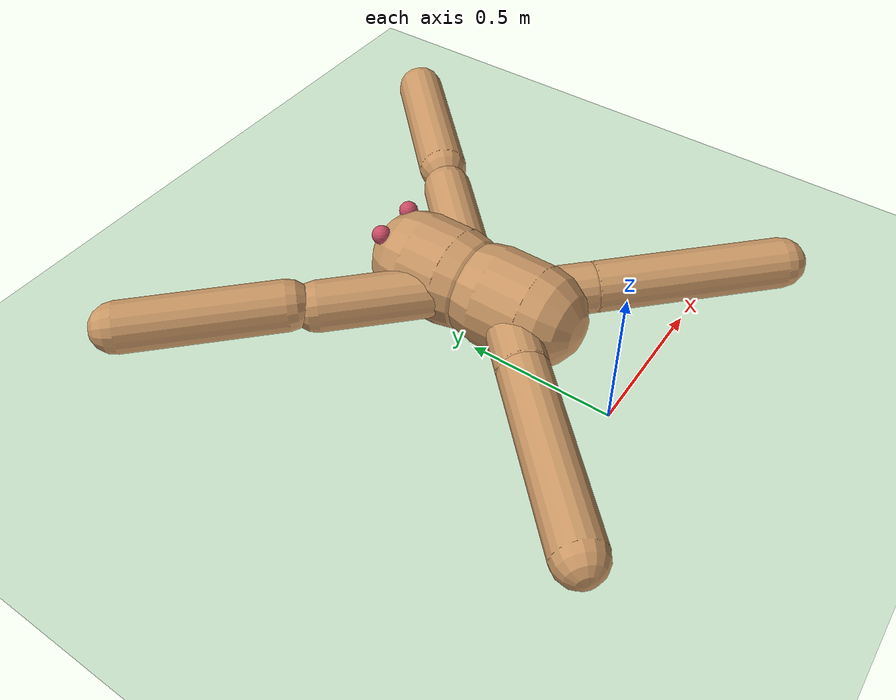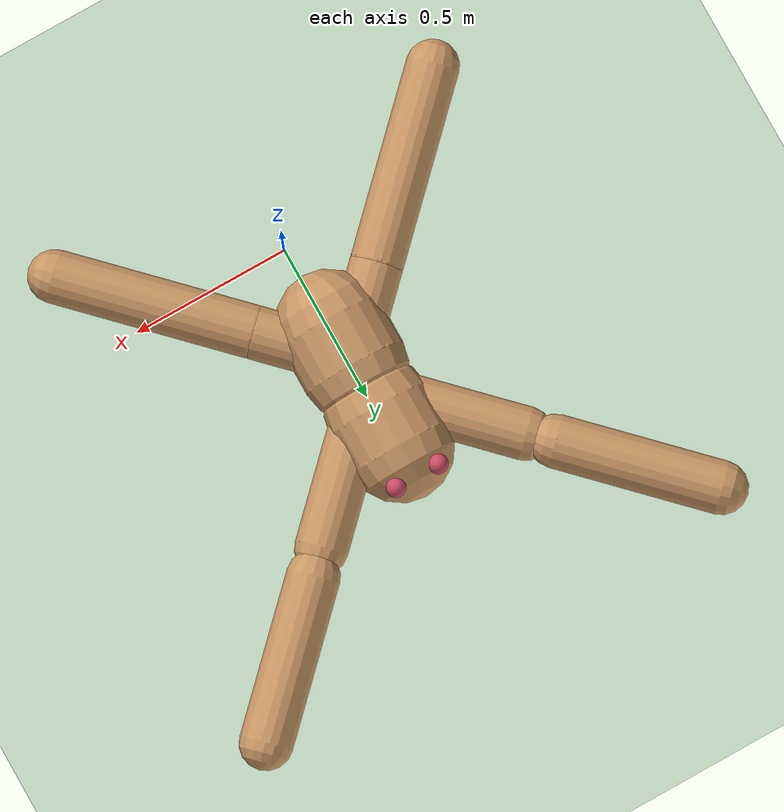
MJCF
<mujoco model="ant">
  <compiler angle="radian"/>

  <option timestep="0.01" integrator="RK4"/>

  <visual>
    <global offwidth="480"/>
  </visual>

  <default>
    <joint limited="true" armature="1" damping="2"/>
    <geom conaffinity="0" friction="1 0.5 0.5" margin="0.01" density="500" rgba="0.8 0.6 0.4 1"/>
  </default>

  <custom>
    <numeric name="init_qpos" size="15" data="0 0 0.55 0.707107 0 0 -0.707107 0 1 0 -1 0 -1 0 1"/>
  </custom>

  <asset>
    <texture type="skybox" colorspace="auto" builtin="gradient" rgb1="1 1 1" rgb2="0 0 0" width="100" height="600"/>
    <texture type="cube" colorspace="auto" name="texgeom" builtin="flat" mark="cross" rgb1="0.8 0.6 0.4" rgb2="0.8 0.6 0.4" markrgb="1 1 1" width="127" height="762"/>
    <texture type="2d" colorspace="auto" name="texplane" builtin="checker" rgb1="0 0 0" rgb2="0.8 0.8 0.8" width="100" height="100"/>
    <material name="MatPlane" texture="texplane" texrepeat="60 60" specular="1" shininess="1" reflectance="0.5"/>
    <material name="geom" texture="texgeom" texuniform="true"/>
  </asset>

  <worldbody>
    <geom name="floor" size="40 40 40" type="plane" conaffinity="1" material="MatPlane" rgba="0.8 0.9 0.8 1"/>
    <light pos="0 0 1.3" dir="0 0 -1" type="directional" cutoff="100" exponent="1" diffuse="1 1 1" specular="0.1 0.1 0.1"/>
    <body name="torso_f" pos="0 0.6 0.28">
      <joint name="root" type="free" margin="0.01" armature="0" damping="0"/>
      <geom name="torso_front" type="capsule"  size="0.16 0.2" fromto="0 -.03  0   0 0.1  0"  />
      <geom name="left_eye" size="0.03" pos="-0.07 0.2 0.11" rgba="0.8 0.3 0.4 1" />
      <geom name="right_eye" size="0.03" pos="0.07 0.2 0.11" rgba="0.8 0.3 0.4 1" />

      <camera name="track" pos="3.5 0 0.45" quat="0.478354 0.520038 0.520038 0.478354" mode="trackcom"/>
      <body name="front_right_leg" pos=".02 -0.08 0.0">
        <joint name="hip_1" pos="0 0 0" axis="0 0 1" range="-0.523599 0.523599"/>
        <geom name="right_leg_geom" size="0.08 0.2" pos="0.18 0.18 0" quat="0.707107 0.5 -0.5 0" type="capsule"/>
        <body pos="0.28 0.28 0">
          <joint name="ankle_1" pos="0 0 0" axis="-0.707107 0.707107 0" range="0.523599 1.22173"/>
          <geom name="right_ankle_geom" size="0.08 0.25" pos="0.28 0.28 0.02" quat="0.707107 0.5 -0.5 0" type="capsule"/>
        </body>
      </body>
      <body name="front_left_leg" pos="-.02 -0.08 0.0">
        <joint name="hip_2" pos="0 0 0" axis="0 0 1" range="-0.523599 0.523599"/>
        <geom name="left_leg_geom" size="0.08 0.2" pos="-0.18 0.18 0" quat="0.707107 0.5 0.5 0" type="capsule"/>
        <body pos="-0.28 0.28 0">
          <joint name="ankle_2" pos="0 0 0" axis="0.707107 0.707107 0" range="-1.22173 -0.523599"/>
          <geom name="left_ankle_geom" size="0.08 0.25" pos="-0.28 0.28 0.02" quat="0.707107 0.5 0.5 0" type="capsule"/>
        </body>
      </body>
      <body name="torso_b" pos="0 -0.2 0">
        <geom name="torso_back" type="capsule"  size="0.16 0.2" fromto="0 -.12  0   0 0.03  0"  />
        <body name="back_left_leg">
          <joint name="hip_3" pos="0 0 0" axis="0 0 1" range="-0.523599 0.523599"/>
          <geom name="back_leg_geom" size="0.08 0.141421" pos="-0.1 -0.1 0" quat="0.707107 -0.5 0.5 0" type="capsule"/>
          <body pos="-0.2 -0.2 0">
            <joint name="ankle_3" pos="0 0 0" axis="-0.707107 0.707107 0" range="-1.22173 -0.523599"/>
            <geom name="third_ankle_geom" size="0.08 0.3" pos="-0.22 -0.22 0" quat="0.707107 -0.5 0.5 0" type="capsule"/>
          </body>
      </body>
      <body name="back_right_leg">
        <joint name="hip_4" pos="0 0 0" axis="0 0 1" range="-0.523599 0.523599"/>
        <geom name="rightback_leg_geom" size="0.08 0.141421" pos="0.1 -0.1 0" quat="0.707107 -0.5 -0.5 0" type="capsule"/>
        <body pos="0.2 -0.2 0">
          <joint name="ankle_4" pos="0 0 0" axis="0.707107 0.707107 0" range="0.523599 1.22173"/>
          <geom name="fourth_ankle_geom" size="0.08 0.3" pos="0.22 -0.22 0" quat="0.707107 -0.5 -0.5 0" type="capsule"/>
        </body>
      </body>

      </body>

    </body>
  </worldbody>

  <actuator>

    <general joint="hip_1" ctrllimited="true" ctrlrange="-1 1" gear="140 0 0 0 0 0"/>
    <general joint="hip_2" ctrllimited="true" ctrlrange="-1 1" gear="140 0 0 0 0 0"/>
    <general joint="hip_3" ctrllimited="true" ctrlrange="-1 1" gear="140 0 0 0 0 0"/>
    <general joint="hip_4" ctrllimited="true" ctrlrange="-1 1" gear="140 0 0 0 0 0"/>

    <general joint="ankle_1" ctrllimited="true" ctrlrange="-1 1" gear="120 0 0 0 0 0"/>
    <general joint="ankle_2" ctrllimited="true" ctrlrange="-1 1" gear="120 0 0 0 0 0"/>
    <general joint="ankle_3" ctrllimited="true" ctrlrange="-1 1" gear="120 0 0 0 0 0"/>
    <general joint="ankle_4" ctrllimited="true" ctrlrange="-1 1" gear="120 0 0 0 0 0"/>
  </actuator>
</mujoco>
